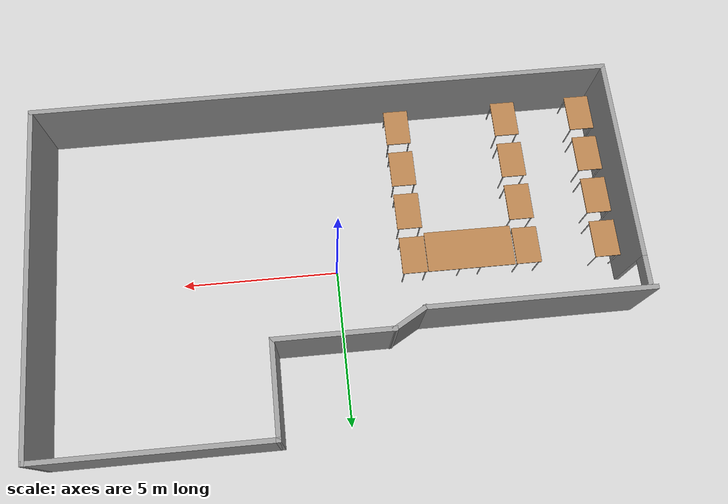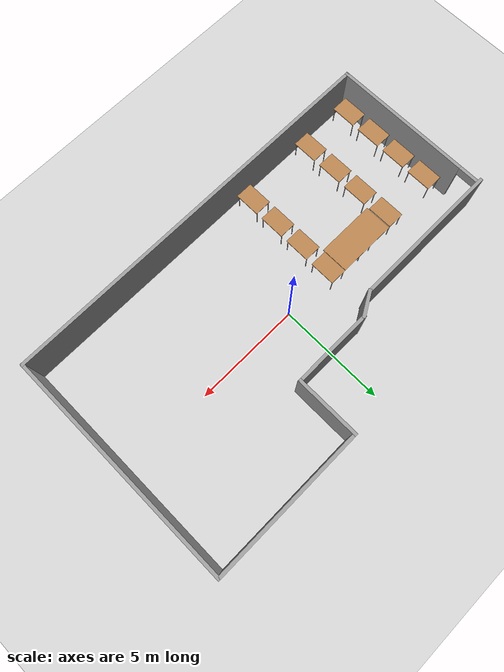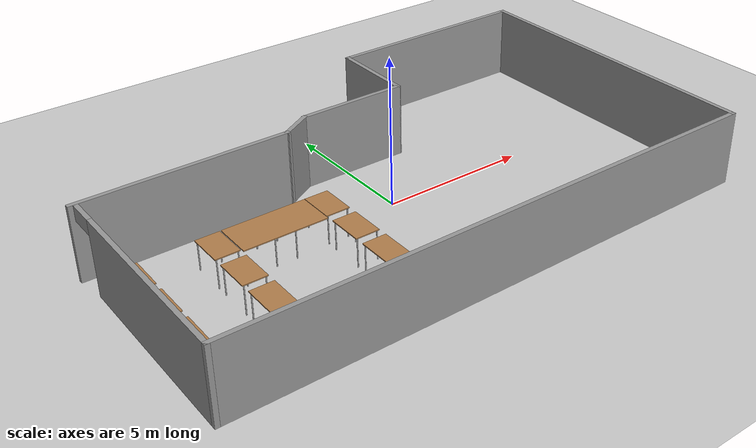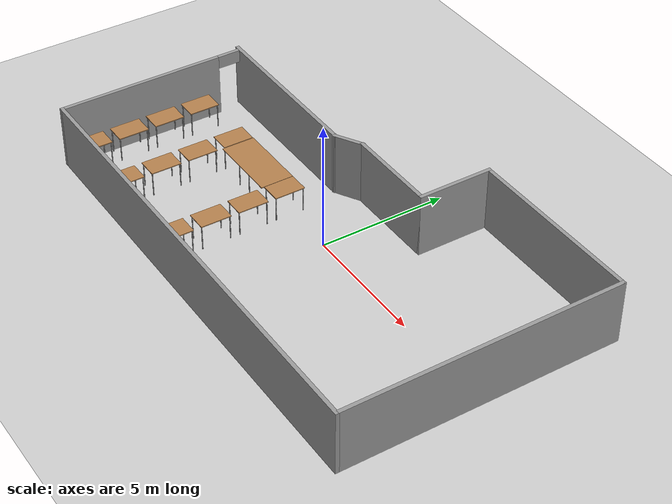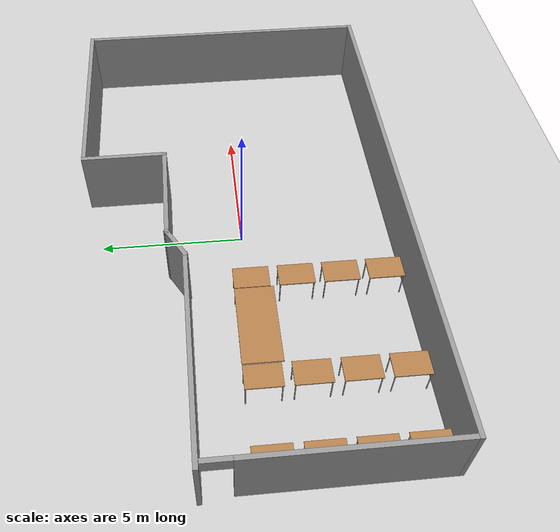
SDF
<sdf version="1.6">
 <world name="default">
  <model name="ground_plane">
   <static>1</static>
   <link name="link">
    <collision name="collision">
     <geometry><plane><normal>0 0 1</normal><size>100 100</size></plane></geometry>
     <surface><friction><ode><mu>100</mu><mu2>50</mu2></ode></friction></surface>
    </collision>
    <visual name="visual">
     <cast_shadows>0</cast_shadows>
     <geometry><plane><normal>0 0 1</normal><size>100 100</size></plane></geometry>
     <material>
      <script><uri>file://media/materials/scripts/gazebo.material</uri><name>Gazebo/Grey</name></script>
     </material>
    </visual>
   </link>
  </model>
  <model name="room_walls">
   <link name="Wall_0">
    <collision name="Wall_0_Collision">
     <geometry><box><size>7 0.15 2.5</size></box></geometry>
     <pose>0 0 1.25 0 -0 0</pose>
    </collision>
    <visual name="Wall_0_Visual">
     <pose>0 0 1.25 0 -0 0</pose>
     <geometry><box><size>7 0.15 2.5</size></box></geometry>
     <material>
      <script><uri>file://media/materials/scripts/gazebo.material</uri><name>Gazebo/Grey</name></script>
      <ambient>1 1 1 1</ambient>
     </material>
     <meta><layer>0</layer></meta>
    </visual>
    <pose>-5.82631 2.025 0 0 -0 0</pose>
   </link>
   <link name="Wall_1">
    <collision name="Wall_1_Collision">
     <geometry><box><size>1.25 0.15 2.5</size></box></geometry>
     <pose>0 0 1.25 0 -0 0</pose>
    </collision>
    <visual name="Wall_1_Visual">
     <pose>0 0 1.25 0 -0 0</pose>
     <geometry><box><size>1.25 0.15 2.5</size></box></geometry>
     <material>
      <script><uri>file://media/materials/scripts/gazebo.material</uri><name>Gazebo/Grey</name></script>
      <ambient>1 1 1 1</ambient>
     </material>
     <meta><layer>0</layer></meta>
    </visual>
    <pose>-1.925 2.3 0 0 -0 0.523599</pose>
   </link>
   <link name="Wall_2">
    <collision name="Wall_2_Collision">
     <geometry><box><size>3.75 0.15 2.5</size></box></geometry>
     <pose>0 0 1.25 0 -0 0</pose>
    </collision>
    <visual name="Wall_2_Visual">
     <pose>0 0 1.25 0 -0 0</pose>
     <geometry><box><size>3.75 0.15 2.5</size></box></geometry>
     <material>
      <script><uri>file://media/materials/scripts/gazebo.material</uri><name>Gazebo/Grey</name></script>
      <ambient>1 1 1 1</ambient>
     </material>
     <meta><layer>0</layer></meta>
    </visual>
    <pose>0.351314 2.575 0 0 -0 0</pose>
   </link>
   <link name="Wall_3">
    <collision name="Wall_3_Collision">
     <geometry><box><size>3 0.15 2.5</size></box></geometry>
     <pose>0 0 1.25 0 -0 0</pose>
    </collision>
    <visual name="Wall_3_Visual">
     <pose>0 0 1.25 0 -0 0</pose>
     <geometry><box><size>3 0.15 2.5</size></box></geometry>
     <material>
      <script><uri>file://media/materials/scripts/gazebo.material</uri><name>Gazebo/Grey</name></script>
      <ambient>1 1 1 1</ambient>
     </material>
     <meta><layer>0</layer></meta>
    </visual>
    <pose>2.15131 4 0 0 -0 1.5708</pose>
   </link>
   <link name="Wall_4">
    <collision name="Wall_4_Collision">
     <geometry><box><size>7.25 0.15 2.5</size></box></geometry>
     <pose>0 0 1.25 0 -0 0</pose>
    </collision>
    <visual name="Wall_4_Visual">
     <pose>0 0 1.25 0 -0 0</pose>
     <geometry><box><size>7.25 0.15 2.5</size></box></geometry>
     <material>
      <script><uri>file://media/materials/scripts/gazebo.material</uri><name>Gazebo/Grey</name></script>
      <ambient>1 1 1 1</ambient>
     </material>
     <meta><layer>0</layer></meta>
    </visual>
    <pose>5.70131 5.425 0 0 -0 0</pose>
   </link>
   <link name="Wall_5">
    <collision name="Wall_5_Collision">
     <geometry><box><size>11 0.15 2.5</size></box></geometry>
     <pose>0 0 1.25 0 -0 0</pose>
    </collision>
    <visual name="Wall_5_Visual">
     <pose>0 0 1.25 0 -0 0</pose>
     <geometry><box><size>11 0.15 2.5</size></box></geometry>
     <material>
      <script><uri>file://media/materials/scripts/gazebo.material</uri><name>Gazebo/Grey</name></script>
      <ambient>1 1 1 1</ambient>
     </material>
     <meta><layer>0</layer></meta>
    </visual>
    <pose>9.25131 0 0 0 -0 -1.5708</pose>
   </link>
   <link name="Wall_6">
    <collision name="Wall_6_Collision">
     <geometry><box><size>18.5 0.15 2.5</size></box></geometry>
     <pose>0 0 1.25 0 -0 0</pose>
    </collision>
    <visual name="Wall_6_Visual">
     <pose>0 0 1.25 0 -0 0</pose>
     <geometry><box><size>18.5 0.15 2.5</size></box></geometry>
     <material>
      <script><uri>file://media/materials/scripts/gazebo.material</uri><name>Gazebo/Grey</name></script>
      <ambient>1 1 1 1</ambient>
     </material>
     <meta><layer>0</layer></meta>
    </visual>
    <pose>0.076314 -5.425 0 0 -0 3.14159</pose>
   </link>
   <link name="Wall_7">
    <pose>-9.09869 -1.75 0 0 -0 1.5708</pose>
    <visual name="Wall_7_Visual_0">
     <pose>-0.476341 0 1.25 0 -0 0</pose>
     <geometry><box><size>6.54732 0.15 2.5</size></box></geometry>
     <material>
      <script><uri>file://media/materials/scripts/gazebo.material</uri><name>Gazebo/Grey</name></script>
      <ambient>1 1 1 1</ambient>
     </material>
     <meta><layer>0</layer></meta>
    </visual>
    <collision name="Wall_7_Collision_0">
     <geometry><box><size>6.54732 0.15 2.5</size></box></geometry>
     <pose>-0.476341 0 1.25 0 -0 0</pose>
    </collision>
    <visual name="Wall_7_Visual_2">
     <pose>3.24732 0 2.25 0 -0 0</pose>
     <geometry><box><size>0.9 0.15 0.5</size></box></geometry>
     <material>
      <script><uri>file://media/materials/scripts/gazebo.material</uri><name>Gazebo/Grey</name></script>
      <ambient>1 1 1 1</ambient>
     </material>
     <meta><layer>0</layer></meta>
    </visual>
    <collision name="Wall_7_Collision_2">
     <geometry><box><size>0.9 0.15 0.5</size></box></geometry>
     <pose>3.24732 0 2.25 0 -0 0</pose>
    </collision>
   </link>
   <static>1</static>
  </model>
  <model name="table_0">
   <pose>-8.6000628 -4.582113 0 0 -0 1.568221</pose>
   <static>1</static>
   <link name="table_0_link">
    <collision name="surface">
     <pose>0 0 1 0 -0 0</pose>
     <geometry><box><size>1.2 0.8 0.035</size></box></geometry>
     <surface><friction><ode><mu>0.6</mu><mu2>0.6</mu2></ode></friction></surface>
    </collision>
    <visual name="visual1">
     <pose>0 0 1 0 -0 0</pose>
     <geometry><box><size>1.2 0.8 0.035</size></box></geometry>
     <material>
      <script><uri>file://media/materials/scripts/gazebo.material</uri><name>Gazebo/Wood</name></script>
     </material>
    </visual>
    <collision name="front_left_leg">
     <pose>0.56 0.34 0.5 0 -0 0</pose>
     <geometry><cylinder><radius>0.02</radius><length>1</length></cylinder></geometry>
    </collision>
    <visual name="front_left_leg">
     <pose>0.56 0.34 0.5 0 -0 0</pose>
     <geometry><cylinder><radius>0.02</radius><length>1</length></cylinder></geometry>
     <material>
      <script><uri>file://media/materials/scripts/gazebo.material</uri><name>Gazebo/Grey</name></script>
     </material>
    </visual>
    <collision name="front_right_leg">
     <pose>0.56 -0.34 0.5 0 -0 0</pose>
     <geometry><cylinder><radius>0.02</radius><length>1</length></cylinder></geometry>
    </collision>
    <visual name="front_right_leg">
     <pose>0.56 -0.34 0.5 0 -0 0</pose>
     <geometry><cylinder><radius>0.02</radius><length>1</length></cylinder></geometry>
     <material>
      <script><uri>file://media/materials/scripts/gazebo.material</uri><name>Gazebo/Grey</name></script>
     </material>
    </visual>
    <collision name="back_right_leg">
     <pose>-0.56 -0.34 0.5 0 -0 0</pose>
     <geometry><cylinder><radius>0.02</radius><length>1</length></cylinder></geometry>
    </collision>
    <visual name="back_right_leg">
     <pose>-0.56 -0.34 0.5 0 -0 0</pose>
     <geometry><cylinder><radius>0.02</radius><length>1</length></cylinder></geometry>
     <material>
      <script><uri>file://media/materials/scripts/gazebo.material</uri><name>Gazebo/Grey</name></script>
     </material>
    </visual>
    <collision name="back_left_leg">
     <pose>-0.56 0.34 0.5 0 -0 0</pose>
     <geometry><cylinder><radius>0.02</radius><length>1</length></cylinder></geometry>
    </collision>
    <visual name="back_left_leg">
     <pose>-0.56 0.34 0.5 0 -0 0</pose>
     <geometry><cylinder><radius>0.02</radius><length>1</length></cylinder></geometry>
     <material>
      <script><uri>file://media/materials/scripts/gazebo.material</uri><name>Gazebo/Grey</name></script>
     </material>
    </visual>
   </link>
  </model>
  <model name="table_1">
   <pose>-8.6000628 -3.082113 0 0 -0 1.568221</pose>
   <static>1</static>
   <link name="table_1_link">
    <collision name="surface">
     <pose>0 0 1 0 -0 0</pose>
     <geometry><box><size>1.2 0.8 0.035</size></box></geometry>
     <surface><friction><ode><mu>0.6</mu><mu2>0.6</mu2></ode></friction></surface>
    </collision>
    <visual name="visual1">
     <pose>0 0 1 0 -0 0</pose>
     <geometry><box><size>1.2 0.8 0.035</size></box></geometry>
     <material>
      <script><uri>file://media/materials/scripts/gazebo.material</uri><name>Gazebo/Wood</name></script>
     </material>
    </visual>
    <collision name="front_left_leg">
     <pose>0.56 0.34 0.5 0 -0 0</pose>
     <geometry><cylinder><radius>0.02</radius><length>1</length></cylinder></geometry>
    </collision>
    <visual name="front_left_leg">
     <pose>0.56 0.34 0.5 0 -0 0</pose>
     <geometry><cylinder><radius>0.02</radius><length>1</length></cylinder></geometry>
     <material>
      <script><uri>file://media/materials/scripts/gazebo.material</uri><name>Gazebo/Grey</name></script>
     </material>
    </visual>
    <collision name="front_right_leg">
     <pose>0.56 -0.34 0.5 0 -0 0</pose>
     <geometry><cylinder><radius>0.02</radius><length>1</length></cylinder></geometry>
    </collision>
    <visual name="front_right_leg">
     <pose>0.56 -0.34 0.5 0 -0 0</pose>
     <geometry><cylinder><radius>0.02</radius><length>1</length></cylinder></geometry>
     <material>
      <script><uri>file://media/materials/scripts/gazebo.material</uri><name>Gazebo/Grey</name></script>
     </material>
    </visual>
    <collision name="back_right_leg">
     <pose>-0.56 -0.34 0.5 0 -0 0</pose>
     <geometry><cylinder><radius>0.02</radius><length>1</length></cylinder></geometry>
    </collision>
    <visual name="back_right_leg">
     <pose>-0.56 -0.34 0.5 0 -0 0</pose>
     <geometry><cylinder><radius>0.02</radius><length>1</length></cylinder></geometry>
     <material>
      <script><uri>file://media/materials/scripts/gazebo.material</uri><name>Gazebo/Grey</name></script>
     </material>
    </visual>
    <collision name="back_left_leg">
     <pose>-0.56 0.34 0.5 0 -0 0</pose>
     <geometry><cylinder><radius>0.02</radius><length>1</length></cylinder></geometry>
    </collision>
    <visual name="back_left_leg">
     <pose>-0.56 0.34 0.5 0 -0 0</pose>
     <geometry><cylinder><radius>0.02</radius><length>1</length></cylinder></geometry>
     <material>
      <script><uri>file://media/materials/scripts/gazebo.material</uri><name>Gazebo/Grey</name></script>
     </material>
    </visual>
   </link>
  </model>
  <model name="table_2">
   <pose>-8.6000628 -1.582113 0 0 -0 1.568221</pose>
   <static>1</static>
   <link name="table_2_link">
    <collision name="surface">
     <pose>0 0 1 0 -0 0</pose>
     <geometry><box><size>1.2 0.8 0.035</size></box></geometry>
     <surface><friction><ode><mu>0.6</mu><mu2>0.6</mu2></ode></friction></surface>
    </collision>
    <visual name="visual1">
     <pose>0 0 1 0 -0 0</pose>
     <geometry><box><size>1.2 0.8 0.035</size></box></geometry>
     <material>
      <script><uri>file://media/materials/scripts/gazebo.material</uri><name>Gazebo/Wood</name></script>
     </material>
    </visual>
    <collision name="front_left_leg">
     <pose>0.56 0.34 0.5 0 -0 0</pose>
     <geometry><cylinder><radius>0.02</radius><length>1</length></cylinder></geometry>
    </collision>
    <visual name="front_left_leg">
     <pose>0.56 0.34 0.5 0 -0 0</pose>
     <geometry><cylinder><radius>0.02</radius><length>1</length></cylinder></geometry>
     <material>
      <script><uri>file://media/materials/scripts/gazebo.material</uri><name>Gazebo/Grey</name></script>
     </material>
    </visual>
    <collision name="front_right_leg">
     <pose>0.56 -0.34 0.5 0 -0 0</pose>
     <geometry><cylinder><radius>0.02</radius><length>1</length></cylinder></geometry>
    </collision>
    <visual name="front_right_leg">
     <pose>0.56 -0.34 0.5 0 -0 0</pose>
     <geometry><cylinder><radius>0.02</radius><length>1</length></cylinder></geometry>
     <material>
      <script><uri>file://media/materials/scripts/gazebo.material</uri><name>Gazebo/Grey</name></script>
     </material>
    </visual>
    <collision name="back_right_leg">
     <pose>-0.56 -0.34 0.5 0 -0 0</pose>
     <geometry><cylinder><radius>0.02</radius><length>1</length></cylinder></geometry>
    </collision>
    <visual name="back_right_leg">
     <pose>-0.56 -0.34 0.5 0 -0 0</pose>
     <geometry><cylinder><radius>0.02</radius><length>1</length></cylinder></geometry>
     <material>
      <script><uri>file://media/materials/scripts/gazebo.material</uri><name>Gazebo/Grey</name></script>
     </material>
    </visual>
    <collision name="back_left_leg">
     <pose>-0.56 0.34 0.5 0 -0 0</pose>
     <geometry><cylinder><radius>0.02</radius><length>1</length></cylinder></geometry>
    </collision>
    <visual name="back_left_leg">
     <pose>-0.56 0.34 0.5 0 -0 0</pose>
     <geometry><cylinder><radius>0.02</radius><length>1</length></cylinder></geometry>
     <material>
      <script><uri>file://media/materials/scripts/gazebo.material</uri><name>Gazebo/Grey</name></script>
     </material>
    </visual>
   </link>
  </model>
  <model name="table_3">
   <pose>-8.6000628 -0.082113 0 0 -0 1.568221</pose>
   <static>1</static>
   <link name="table_3_link">
    <collision name="surface">
     <pose>0 0 1 0 -0 0</pose>
     <geometry><box><size>1.2 0.8 0.035</size></box></geometry>
     <surface><friction><ode><mu>0.6</mu><mu2>0.6</mu2></ode></friction></surface>
    </collision>
    <visual name="visual1">
     <pose>0 0 1 0 -0 0</pose>
     <geometry><box><size>1.2 0.8 0.035</size></box></geometry>
     <material>
      <script><uri>file://media/materials/scripts/gazebo.material</uri><name>Gazebo/Wood</name></script>
     </material>
    </visual>
    <collision name="front_left_leg">
     <pose>0.56 0.34 0.5 0 -0 0</pose>
     <geometry><cylinder><radius>0.02</radius><length>1</length></cylinder></geometry>
    </collision>
    <visual name="front_left_leg">
     <pose>0.56 0.34 0.5 0 -0 0</pose>
     <geometry><cylinder><radius>0.02</radius><length>1</length></cylinder></geometry>
     <material>
      <script><uri>file://media/materials/scripts/gazebo.material</uri><name>Gazebo/Grey</name></script>
     </material>
    </visual>
    <collision name="front_right_leg">
     <pose>0.56 -0.34 0.5 0 -0 0</pose>
     <geometry><cylinder><radius>0.02</radius><length>1</length></cylinder></geometry>
    </collision>
    <visual name="front_right_leg">
     <pose>0.56 -0.34 0.5 0 -0 0</pose>
     <geometry><cylinder><radius>0.02</radius><length>1</length></cylinder></geometry>
     <material>
      <script><uri>file://media/materials/scripts/gazebo.material</uri><name>Gazebo/Grey</name></script>
     </material>
    </visual>
    <collision name="back_right_leg">
     <pose>-0.56 -0.34 0.5 0 -0 0</pose>
     <geometry><cylinder><radius>0.02</radius><length>1</length></cylinder></geometry>
    </collision>
    <visual name="back_right_leg">
     <pose>-0.56 -0.34 0.5 0 -0 0</pose>
     <geometry><cylinder><radius>0.02</radius><length>1</length></cylinder></geometry>
     <material>
      <script><uri>file://media/materials/scripts/gazebo.material</uri><name>Gazebo/Grey</name></script>
     </material>
    </visual>
    <collision name="back_left_leg">
     <pose>-0.56 0.34 0.5 0 -0 0</pose>
     <geometry><cylinder><radius>0.02</radius><length>1</length></cylinder></geometry>
    </collision>
    <visual name="back_left_leg">
     <pose>-0.56 0.34 0.5 0 -0 0</pose>
     <geometry><cylinder><radius>0.02</radius><length>1</length></cylinder></geometry>
     <material>
      <script><uri>file://media/materials/scripts/gazebo.material</uri><name>Gazebo/Grey</name></script>
     </material>
    </visual>
   </link>
  </model>
  <model name="table_4">
   <pose>-6.070849 -4.582113 0 0 -0 1.568221</pose>
   <static>1</static>
   <link name="table_4_link">
    <collision name="surface">
     <pose>0 0 1 0 -0 0</pose>
     <geometry><box><size>1.2 0.8 0.035</size></box></geometry>
     <surface><friction><ode><mu>0.6</mu><mu2>0.6</mu2></ode></friction></surface>
    </collision>
    <visual name="visual1">
     <pose>0 0 1 0 -0 0</pose>
     <geometry><box><size>1.2 0.8 0.035</size></box></geometry>
     <material>
      <script><uri>file://media/materials/scripts/gazebo.material</uri><name>Gazebo/Wood</name></script>
     </material>
    </visual>
    <collision name="front_left_leg">
     <pose>0.56 0.34 0.5 0 -0 0</pose>
     <geometry><cylinder><radius>0.02</radius><length>1</length></cylinder></geometry>
    </collision>
    <visual name="front_left_leg">
     <pose>0.56 0.34 0.5 0 -0 0</pose>
     <geometry><cylinder><radius>0.02</radius><length>1</length></cylinder></geometry>
     <material>
      <script><uri>file://media/materials/scripts/gazebo.material</uri><name>Gazebo/Grey</name></script>
     </material>
    </visual>
    <collision name="front_right_leg">
     <pose>0.56 -0.34 0.5 0 -0 0</pose>
     <geometry><cylinder><radius>0.02</radius><length>1</length></cylinder></geometry>
    </collision>
    <visual name="front_right_leg">
     <pose>0.56 -0.34 0.5 0 -0 0</pose>
     <geometry><cylinder><radius>0.02</radius><length>1</length></cylinder></geometry>
     <material>
      <script><uri>file://media/materials/scripts/gazebo.material</uri><name>Gazebo/Grey</name></script>
     </material>
    </visual>
    <collision name="back_right_leg">
     <pose>-0.56 -0.34 0.5 0 -0 0</pose>
     <geometry><cylinder><radius>0.02</radius><length>1</length></cylinder></geometry>
    </collision>
    <visual name="back_right_leg">
     <pose>-0.56 -0.34 0.5 0 -0 0</pose>
     <geometry><cylinder><radius>0.02</radius><length>1</length></cylinder></geometry>
     <material>
      <script><uri>file://media/materials/scripts/gazebo.material</uri><name>Gazebo/Grey</name></script>
     </material>
    </visual>
    <collision name="back_left_leg">
     <pose>-0.56 0.34 0.5 0 -0 0</pose>
     <geometry><cylinder><radius>0.02</radius><length>1</length></cylinder></geometry>
    </collision>
    <visual name="back_left_leg">
     <pose>-0.56 0.34 0.5 0 -0 0</pose>
     <geometry><cylinder><radius>0.02</radius><length>1</length></cylinder></geometry>
     <material>
      <script><uri>file://media/materials/scripts/gazebo.material</uri><name>Gazebo/Grey</name></script>
     </material>
    </visual>
   </link>
  </model>
  <model name="table_5">
   <pose>-6.070849 -3.082113 0 0 -0 1.568221</pose>
   <static>1</static>
   <link name="table_5_link">
    <collision name="surface">
     <pose>0 0 1 0 -0 0</pose>
     <geometry><box><size>1.2 0.8 0.035</size></box></geometry>
     <surface><friction><ode><mu>0.6</mu><mu2>0.6</mu2></ode></friction></surface>
    </collision>
    <visual name="visual1">
     <pose>0 0 1 0 -0 0</pose>
     <geometry><box><size>1.2 0.8 0.035</size></box></geometry>
     <material>
      <script><uri>file://media/materials/scripts/gazebo.material</uri><name>Gazebo/Wood</name></script>
     </material>
    </visual>
    <collision name="front_left_leg">
     <pose>0.56 0.34 0.5 0 -0 0</pose>
     <geometry><cylinder><radius>0.02</radius><length>1</length></cylinder></geometry>
    </collision>
    <visual name="front_left_leg">
     <pose>0.56 0.34 0.5 0 -0 0</pose>
     <geometry><cylinder><radius>0.02</radius><length>1</length></cylinder></geometry>
     <material>
      <script><uri>file://media/materials/scripts/gazebo.material</uri><name>Gazebo/Grey</name></script>
     </material>
    </visual>
    <collision name="front_right_leg">
     <pose>0.56 -0.34 0.5 0 -0 0</pose>
     <geometry><cylinder><radius>0.02</radius><length>1</length></cylinder></geometry>
    </collision>
    <visual name="front_right_leg">
     <pose>0.56 -0.34 0.5 0 -0 0</pose>
     <geometry><cylinder><radius>0.02</radius><length>1</length></cylinder></geometry>
     <material>
      <script><uri>file://media/materials/scripts/gazebo.material</uri><name>Gazebo/Grey</name></script>
     </material>
    </visual>
    <collision name="back_right_leg">
     <pose>-0.56 -0.34 0.5 0 -0 0</pose>
     <geometry><cylinder><radius>0.02</radius><length>1</length></cylinder></geometry>
    </collision>
    <visual name="back_right_leg">
     <pose>-0.56 -0.34 0.5 0 -0 0</pose>
     <geometry><cylinder><radius>0.02</radius><length>1</length></cylinder></geometry>
     <material>
      <script><uri>file://media/materials/scripts/gazebo.material</uri><name>Gazebo/Grey</name></script>
     </material>
    </visual>
    <collision name="back_left_leg">
     <pose>-0.56 0.34 0.5 0 -0 0</pose>
     <geometry><cylinder><radius>0.02</radius><length>1</length></cylinder></geometry>
    </collision>
    <visual name="back_left_leg">
     <pose>-0.56 0.34 0.5 0 -0 0</pose>
     <geometry><cylinder><radius>0.02</radius><length>1</length></cylinder></geometry>
     <material>
      <script><uri>file://media/materials/scripts/gazebo.material</uri><name>Gazebo/Grey</name></script>
     </material>
    </visual>
   </link>
  </model>
  <model name="table_6">
   <pose>-6.070849 -1.582113 0 0 -0 1.568221</pose>
   <static>1</static>
   <link name="table_6_link">
    <collision name="surface">
     <pose>0 0 1 0 -0 0</pose>
     <geometry><box><size>1.2 0.8 0.035</size></box></geometry>
     <surface><friction><ode><mu>0.6</mu><mu2>0.6</mu2></ode></friction></surface>
    </collision>
    <visual name="visual1">
     <pose>0 0 1 0 -0 0</pose>
     <geometry><box><size>1.2 0.8 0.035</size></box></geometry>
     <material>
      <script><uri>file://media/materials/scripts/gazebo.material</uri><name>Gazebo/Wood</name></script>
     </material>
    </visual>
    <collision name="front_left_leg">
     <pose>0.56 0.34 0.5 0 -0 0</pose>
     <geometry><cylinder><radius>0.02</radius><length>1</length></cylinder></geometry>
    </collision>
    <visual name="front_left_leg">
     <pose>0.56 0.34 0.5 0 -0 0</pose>
     <geometry><cylinder><radius>0.02</radius><length>1</length></cylinder></geometry>
     <material>
      <script><uri>file://media/materials/scripts/gazebo.material</uri><name>Gazebo/Grey</name></script>
     </material>
    </visual>
    <collision name="front_right_leg">
     <pose>0.56 -0.34 0.5 0 -0 0</pose>
     <geometry><cylinder><radius>0.02</radius><length>1</length></cylinder></geometry>
    </collision>
    <visual name="front_right_leg">
     <pose>0.56 -0.34 0.5 0 -0 0</pose>
     <geometry><cylinder><radius>0.02</radius><length>1</length></cylinder></geometry>
     <material>
      <script><uri>file://media/materials/scripts/gazebo.material</uri><name>Gazebo/Grey</name></script>
     </material>
    </visual>
    <collision name="back_right_leg">
     <pose>-0.56 -0.34 0.5 0 -0 0</pose>
     <geometry><cylinder><radius>0.02</radius><length>1</length></cylinder></geometry>
    </collision>
    <visual name="back_right_leg">
     <pose>-0.56 -0.34 0.5 0 -0 0</pose>
     <geometry><cylinder><radius>0.02</radius><length>1</length></cylinder></geometry>
     <material>
      <script><uri>file://media/materials/scripts/gazebo.material</uri><name>Gazebo/Grey</name></script>
     </material>
    </visual>
    <collision name="back_left_leg">
     <pose>-0.56 0.34 0.5 0 -0 0</pose>
     <geometry><cylinder><radius>0.02</radius><length>1</length></cylinder></geometry>
    </collision>
    <visual name="back_left_leg">
     <pose>-0.56 0.34 0.5 0 -0 0</pose>
     <geometry><cylinder><radius>0.02</radius><length>1</length></cylinder></geometry>
     <material>
      <script><uri>file://media/materials/scripts/gazebo.material</uri><name>Gazebo/Grey</name></script>
     </material>
    </visual>
   </link>
  </model>
  <model name="table_7">
   <pose>-6.070849 -0.082113 0 0 -0 1.568221</pose>
   <static>1</static>
   <link name="table_7_link">
    <collision name="surface">
     <pose>0 0 1 0 -0 0</pose>
     <geometry><box><size>1.2 0.8 0.035</size></box></geometry>
     <surface><friction><ode><mu>0.6</mu><mu2>0.6</mu2></ode></friction></surface>
    </collision>
    <visual name="visual1">
     <pose>0 0 1 0 -0 0</pose>
     <geometry><box><size>1.2 0.8 0.035</size></box></geometry>
     <material>
      <script><uri>file://media/materials/scripts/gazebo.material</uri><name>Gazebo/Wood</name></script>
     </material>
    </visual>
    <collision name="front_left_leg">
     <pose>0.56 0.34 0.5 0 -0 0</pose>
     <geometry><cylinder><radius>0.02</radius><length>1</length></cylinder></geometry>
    </collision>
    <visual name="front_left_leg">
     <pose>0.56 0.34 0.5 0 -0 0</pose>
     <geometry><cylinder><radius>0.02</radius><length>1</length></cylinder></geometry>
     <material>
      <script><uri>file://media/materials/scripts/gazebo.material</uri><name>Gazebo/Grey</name></script>
     </material>
    </visual>
    <collision name="front_right_leg">
     <pose>0.56 -0.34 0.5 0 -0 0</pose>
     <geometry><cylinder><radius>0.02</radius><length>1</length></cylinder></geometry>
    </collision>
    <visual name="front_right_leg">
     <pose>0.56 -0.34 0.5 0 -0 0</pose>
     <geometry><cylinder><radius>0.02</radius><length>1</length></cylinder></geometry>
     <material>
      <script><uri>file://media/materials/scripts/gazebo.material</uri><name>Gazebo/Grey</name></script>
     </material>
    </visual>
    <collision name="back_right_leg">
     <pose>-0.56 -0.34 0.5 0 -0 0</pose>
     <geometry><cylinder><radius>0.02</radius><length>1</length></cylinder></geometry>
    </collision>
    <visual name="back_right_leg">
     <pose>-0.56 -0.34 0.5 0 -0 0</pose>
     <geometry><cylinder><radius>0.02</radius><length>1</length></cylinder></geometry>
     <material>
      <script><uri>file://media/materials/scripts/gazebo.material</uri><name>Gazebo/Grey</name></script>
     </material>
    </visual>
    <collision name="back_left_leg">
     <pose>-0.56 0.34 0.5 0 -0 0</pose>
     <geometry><cylinder><radius>0.02</radius><length>1</length></cylinder></geometry>
    </collision>
    <visual name="back_left_leg">
     <pose>-0.56 0.34 0.5 0 -0 0</pose>
     <geometry><cylinder><radius>0.02</radius><length>1</length></cylinder></geometry>
     <material>
      <script><uri>file://media/materials/scripts/gazebo.material</uri><name>Gazebo/Grey</name></script>
     </material>
    </visual>
   </link>
  </model>
  <model name="table_test_2">
   <pose>-4.242669 -0.129126 0  0 -0 1.568221</pose>
   <static>1</static>
   <link name="table_test_2_link">
    <collision name="surface">
     <pose>0 0 1 0 -0 0</pose>
     <geometry><box><size>1.3 2.78 0.035</size></box></geometry>
     <surface><friction><ode><mu>0.6</mu><mu2>0.6</mu2></ode></friction></surface>
    </collision>
    <visual name="visual1">
     <pose>0 0 1 0 -0 0</pose>
     <geometry><box><size>1.3 2.78 0.035</size></box></geometry>
     <material>
      <script><uri>file://media/materials/scripts/gazebo.material</uri><name>Gazebo/Wood</name></script>
     </material>
    </visual>
    <collision name="front_left_leg">
     <pose>0.56 0.34 0.5 0 -0 0</pose>
     <geometry><cylinder><radius>0.02</radius><length>1</length></cylinder></geometry>
    </collision>
    <visual name="front_left_leg">
     <pose>0.56 0.34 0.5 0 -0 0</pose>
     <geometry><cylinder><radius>0.02</radius><length>1</length></cylinder></geometry>
     <material>
      <script><uri>file://media/materials/scripts/gazebo.material</uri><name>Gazebo/Grey</name></script>
     </material>
    </visual>
    <collision name="front_right_leg">
     <pose>0.56 -0.34 0.5 0 -0 0</pose>
     <geometry><cylinder><radius>0.02</radius><length>1</length></cylinder></geometry>
    </collision>
    <visual name="front_right_leg">
     <pose>0.56 -0.34 0.5 0 -0 0</pose>
     <geometry><cylinder><radius>0.02</radius><length>1</length></cylinder></geometry>
     <material>
      <script><uri>file://media/materials/scripts/gazebo.material</uri><name>Gazebo/Grey</name></script>
     </material>
    </visual>
    <collision name="back_right_leg">
     <pose>-0.56 -0.34 0.5 0 -0 0</pose>
     <geometry><cylinder><radius>0.02</radius><length>1</length></cylinder></geometry>
    </collision>
    <visual name="back_right_leg">
     <pose>-0.56 -0.34 0.5 0 -0 0</pose>
     <geometry><cylinder><radius>0.02</radius><length>1</length></cylinder></geometry>
     <material>
      <script><uri>file://media/materials/scripts/gazebo.material</uri><name>Gazebo/Grey</name></script>
     </material>
    </visual>
    <collision name="back_left_leg">
     <pose>-0.56 0.34 0.5 0 -0 0</pose>
     <geometry><cylinder><radius>0.02</radius><length>1</length></cylinder></geometry>
    </collision>
    <visual name="back_left_leg">
     <pose>-0.56 0.34 0.5 0 -0 0</pose>
     <geometry><cylinder><radius>0.02</radius><length>1</length></cylinder></geometry>
     <material>
      <script><uri>file://media/materials/scripts/gazebo.material</uri><name>Gazebo/Grey</name></script>
     </material>
    </visual>
   </link>
  </model>
  <model name="table_8">
   <pose>-2.436673 -4.582113 0 0 -0 1.568221</pose>
   <static>1</static>
   <link name="table_8_link">
    <collision name="surface">
     <pose>0 0 1 0 -0 0</pose>
     <geometry><box><size>1.2 0.8 0.035</size></box></geometry>
     <surface><friction><ode><mu>0.6</mu><mu2>0.6</mu2></ode></friction></surface>
    </collision>
    <visual name="visual1">
     <pose>0 0 1 0 -0 0</pose>
     <geometry><box><size>1.2 0.8 0.035</size></box></geometry>
     <material>
      <script><uri>file://media/materials/scripts/gazebo.material</uri><name>Gazebo/Wood</name></script>
     </material>
    </visual>
    <collision name="front_left_leg">
     <pose>0.56 0.34 0.5 0 -0 0</pose>
     <geometry><cylinder><radius>0.02</radius><length>1</length></cylinder></geometry>
    </collision>
    <visual name="front_left_leg">
     <pose>0.56 0.34 0.5 0 -0 0</pose>
     <geometry><cylinder><radius>0.02</radius><length>1</length></cylinder></geometry>
     <material>
      <script><uri>file://media/materials/scripts/gazebo.material</uri><name>Gazebo/Grey</name></script>
     </material>
    </visual>
    <collision name="front_right_leg">
     <pose>0.56 -0.34 0.5 0 -0 0</pose>
     <geometry><cylinder><radius>0.02</radius><length>1</length></cylinder></geometry>
    </collision>
    <visual name="front_right_leg">
     <pose>0.56 -0.34 0.5 0 -0 0</pose>
     <geometry><cylinder><radius>0.02</radius><length>1</length></cylinder></geometry>
     <material>
      <script><uri>file://media/materials/scripts/gazebo.material</uri><name>Gazebo/Grey</name></script>
     </material>
    </visual>
    <collision name="back_right_leg">
     <pose>-0.56 -0.34 0.5 0 -0 0</pose>
     <geometry><cylinder><radius>0.02</radius><length>1</length></cylinder></geometry>
    </collision>
    <visual name="back_right_leg">
     <pose>-0.56 -0.34 0.5 0 -0 0</pose>
     <geometry><cylinder><radius>0.02</radius><length>1</length></cylinder></geometry>
     <material>
      <script><uri>file://media/materials/scripts/gazebo.material</uri><name>Gazebo/Grey</name></script>
     </material>
    </visual>
    <collision name="back_left_leg">
     <pose>-0.56 0.34 0.5 0 -0 0</pose>
     <geometry><cylinder><radius>0.02</radius><length>1</length></cylinder></geometry>
    </collision>
    <visual name="back_left_leg">
     <pose>-0.56 0.34 0.5 0 -0 0</pose>
     <geometry><cylinder><radius>0.02</radius><length>1</length></cylinder></geometry>
     <material>
      <script><uri>file://media/materials/scripts/gazebo.material</uri><name>Gazebo/Grey</name></script>
     </material>
    </visual>
   </link>
  </model>
  <model name="table_9">
   <pose>-2.436673 -3.082113 0 0 -0 1.568221</pose>
   <static>1</static>
   <link name="table_9_link">
    <collision name="surface">
     <pose>0 0 1 0 -0 0</pose>
     <geometry><box><size>1.2 0.8 0.035</size></box></geometry>
     <surface><friction><ode><mu>0.6</mu><mu2>0.6</mu2></ode></friction></surface>
    </collision>
    <visual name="visual1">
     <pose>0 0 1 0 -0 0</pose>
     <geometry><box><size>1.2 0.8 0.035</size></box></geometry>
     <material>
      <script><uri>file://media/materials/scripts/gazebo.material</uri><name>Gazebo/Wood</name></script>
     </material>
    </visual>
    <collision name="front_left_leg">
     <pose>0.56 0.34 0.5 0 -0 0</pose>
     <geometry><cylinder><radius>0.02</radius><length>1</length></cylinder></geometry>
    </collision>
    <visual name="front_left_leg">
     <pose>0.56 0.34 0.5 0 -0 0</pose>
     <geometry><cylinder><radius>0.02</radius><length>1</length></cylinder></geometry>
     <material>
      <script><uri>file://media/materials/scripts/gazebo.material</uri><name>Gazebo/Grey</name></script>
     </material>
    </visual>
    <collision name="front_right_leg">
     <pose>0.56 -0.34 0.5 0 -0 0</pose>
     <geometry><cylinder><radius>0.02</radius><length>1</length></cylinder></geometry>
    </collision>
    <visual name="front_right_leg">
     <pose>0.56 -0.34 0.5 0 -0 0</pose>
     <geometry><cylinder><radius>0.02</radius><length>1</length></cylinder></geometry>
     <material>
      <script><uri>file://media/materials/scripts/gazebo.material</uri><name>Gazebo/Grey</name></script>
     </material>
    </visual>
    <collision name="back_right_leg">
     <pose>-0.56 -0.34 0.5 0 -0 0</pose>
     <geometry><cylinder><radius>0.02</radius><length>1</length></cylinder></geometry>
    </collision>
    <visual name="back_right_leg">
     <pose>-0.56 -0.34 0.5 0 -0 0</pose>
     <geometry><cylinder><radius>0.02</radius><length>1</length></cylinder></geometry>
     <material>
      <script><uri>file://media/materials/scripts/gazebo.material</uri><name>Gazebo/Grey</name></script>
     </material>
    </visual>
    <collision name="back_left_leg">
     <pose>-0.56 0.34 0.5 0 -0 0</pose>
     <geometry><cylinder><radius>0.02</radius><length>1</length></cylinder></geometry>
    </collision>
    <visual name="back_left_leg">
     <pose>-0.56 0.34 0.5 0 -0 0</pose>
     <geometry><cylinder><radius>0.02</radius><length>1</length></cylinder></geometry>
     <material>
      <script><uri>file://media/materials/scripts/gazebo.material</uri><name>Gazebo/Grey</name></script>
     </material>
    </visual>
   </link>
  </model>
  <model name="table_10">
   <pose>-2.436673 -1.582113 0 0 -0 1.568221</pose>
   <static>1</static>
   <link name="table_10_link">
    <collision name="surface">
     <pose>0 0 1 0 -0 0</pose>
     <geometry><box><size>1.2 0.8 0.035</size></box></geometry>
     <surface><friction><ode><mu>0.6</mu><mu2>0.6</mu2></ode></friction></surface>
    </collision>
    <visual name="visual1">
     <pose>0 0 1 0 -0 0</pose>
     <geometry><box><size>1.2 0.8 0.035</size></box></geometry>
     <material>
      <script><uri>file://media/materials/scripts/gazebo.material</uri><name>Gazebo/Wood</name></script>
     </material>
    </visual>
    <collision name="front_left_leg">
     <pose>0.56 0.34 0.5 0 -0 0</pose>
     <geometry><cylinder><radius>0.02</radius><length>1</length></cylinder></geometry>
    </collision>
    <visual name="front_left_leg">
     <pose>0.56 0.34 0.5 0 -0 0</pose>
     <geometry><cylinder><radius>0.02</radius><length>1</length></cylinder></geometry>
     <material>
      <script><uri>file://media/materials/scripts/gazebo.material</uri><name>Gazebo/Grey</name></script>
     </material>
    </visual>
    <collision name="front_right_leg">
     <pose>0.56 -0.34 0.5 0 -0 0</pose>
     <geometry><cylinder><radius>0.02</radius><length>1</length></cylinder></geometry>
    </collision>
    <visual name="front_right_leg">
     <pose>0.56 -0.34 0.5 0 -0 0</pose>
     <geometry><cylinder><radius>0.02</radius><length>1</length></cylinder></geometry>
     <material>
      <script><uri>file://media/materials/scripts/gazebo.material</uri><name>Gazebo/Grey</name></script>
     </material>
    </visual>
    <collision name="back_right_leg">
     <pose>-0.56 -0.34 0.5 0 -0 0</pose>
     <geometry><cylinder><radius>0.02</radius><length>1</length></cylinder></geometry>
    </collision>
    <visual name="back_right_leg">
     <pose>-0.56 -0.34 0.5 0 -0 0</pose>
     <geometry><cylinder><radius>0.02</radius><length>1</length></cylinder></geometry>
     <material>
      <script><uri>file://media/materials/scripts/gazebo.material</uri><name>Gazebo/Grey</name></script>
     </material>
    </visual>
    <collision name="back_left_leg">
     <pose>-0.56 0.34 0.5 0 -0 0</pose>
     <geometry><cylinder><radius>0.02</radius><length>1</length></cylinder></geometry>
    </collision>
    <visual name="back_left_leg">
     <pose>-0.56 0.34 0.5 0 -0 0</pose>
     <geometry><cylinder><radius>0.02</radius><length>1</length></cylinder></geometry>
     <material>
      <script><uri>file://media/materials/scripts/gazebo.material</uri><name>Gazebo/Grey</name></script>
     </material>
    </visual>
   </link>
  </model>
  <model name="table_11">
   <pose>-2.436673 -0.082113 0 0 -0 1.568221</pose>
   <static>1</static>
   <link name="table_11_link">
    <collision name="surface">
     <pose>0 0 1 0 -0 0</pose>
     <geometry><box><size>1.2 0.8 0.035</size></box></geometry>
     <surface><friction><ode><mu>0.6</mu><mu2>0.6</mu2></ode></friction></surface>
    </collision>
    <visual name="visual1">
     <pose>0 0 1 0 -0 0</pose>
     <geometry><box><size>1.2 0.8 0.035</size></box></geometry>
     <material>
      <script><uri>file://media/materials/scripts/gazebo.material</uri><name>Gazebo/Wood</name></script>
     </material>
    </visual>
    <collision name="front_left_leg">
     <pose>0.56 0.34 0.5 0 -0 0</pose>
     <geometry><cylinder><radius>0.02</radius><length>1</length></cylinder></geometry>
    </collision>
    <visual name="front_left_leg">
     <pose>0.56 0.34 0.5 0 -0 0</pose>
     <geometry><cylinder><radius>0.02</radius><length>1</length></cylinder></geometry>
     <material>
      <script><uri>file://media/materials/scripts/gazebo.material</uri><name>Gazebo/Grey</name></script>
     </material>
    </visual>
    <collision name="front_right_leg">
     <pose>0.56 -0.34 0.5 0 -0 0</pose>
     <geometry><cylinder><radius>0.02</radius><length>1</length></cylinder></geometry>
    </collision>
    <visual name="front_right_leg">
     <pose>0.56 -0.34 0.5 0 -0 0</pose>
     <geometry><cylinder><radius>0.02</radius><length>1</length></cylinder></geometry>
     <material>
      <script><uri>file://media/materials/scripts/gazebo.material</uri><name>Gazebo/Grey</name></script>
     </material>
    </visual>
    <collision name="back_right_leg">
     <pose>-0.56 -0.34 0.5 0 -0 0</pose>
     <geometry><cylinder><radius>0.02</radius><length>1</length></cylinder></geometry>
    </collision>
    <visual name="back_right_leg">
     <pose>-0.56 -0.34 0.5 0 -0 0</pose>
     <geometry><cylinder><radius>0.02</radius><length>1</length></cylinder></geometry>
     <material>
      <script><uri>file://media/materials/scripts/gazebo.material</uri><name>Gazebo/Grey</name></script>
     </material>
    </visual>
    <collision name="back_left_leg">
     <pose>-0.56 0.34 0.5 0 -0 0</pose>
     <geometry><cylinder><radius>0.02</radius><length>1</length></cylinder></geometry>
    </collision>
    <visual name="back_left_leg">
     <pose>-0.56 0.34 0.5 0 -0 0</pose>
     <geometry><cylinder><radius>0.02</radius><length>1</length></cylinder></geometry>
     <material>
      <script><uri>file://media/materials/scripts/gazebo.material</uri><name>Gazebo/Grey</name></script>
     </material>
    </visual>
   </link>
  </model>
 </world>
</sdf>
